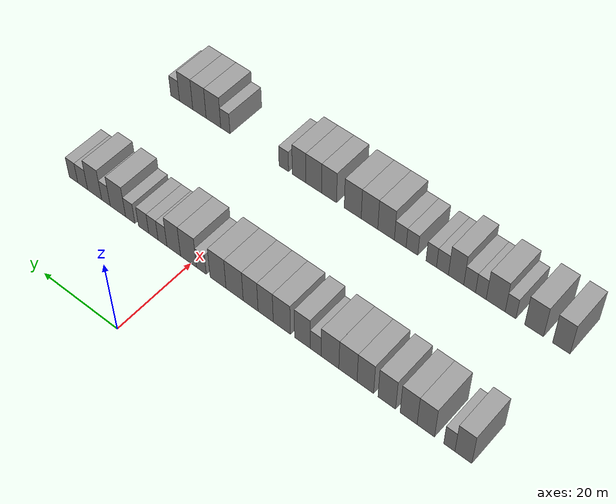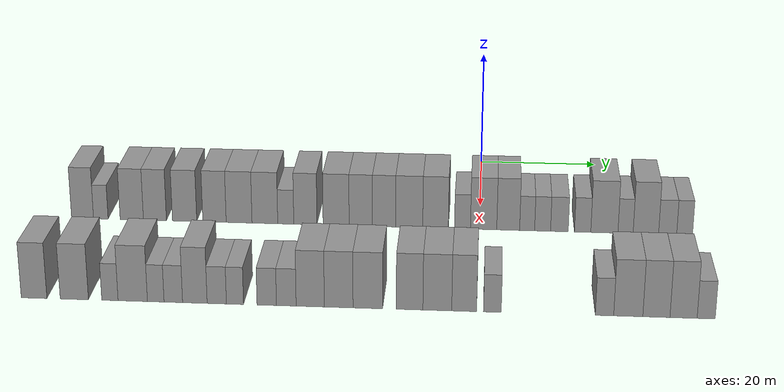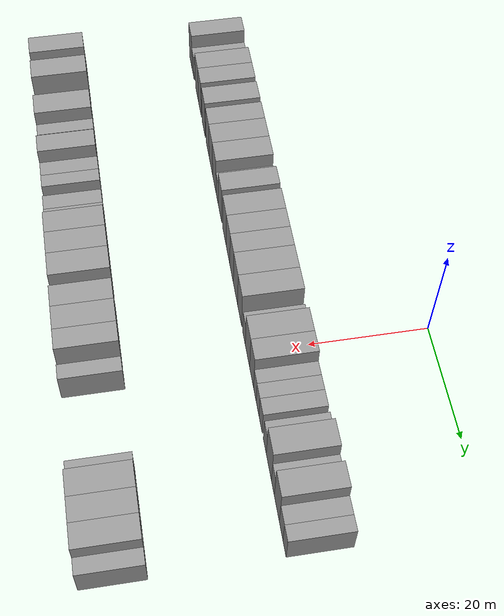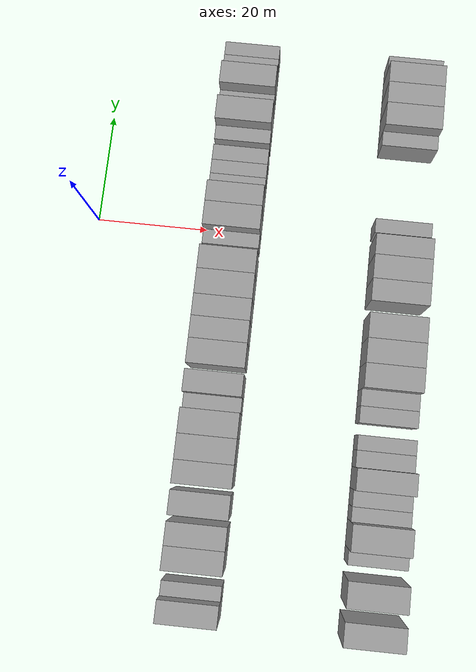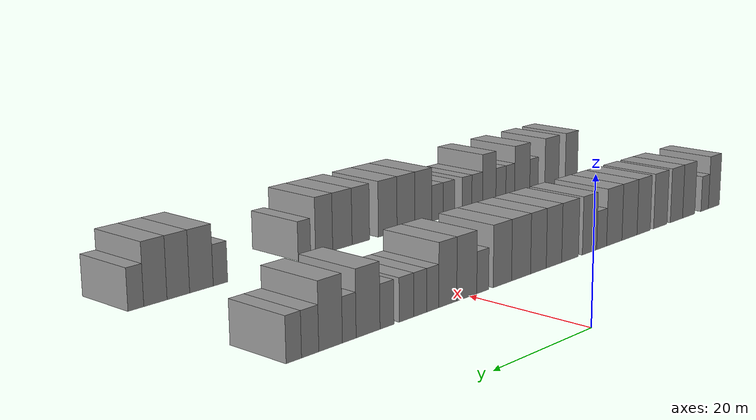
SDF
<sdf version="1.6">
 <world name="default">
  <model name="building_37">
   <static>1</static>
   <pose>25.0000 -65.2476 0 0.000000 0.000000 0.000000</pose>
   <link name="link">
    <pose>0 0 4.50 0 0 0</pose>
    <collision name="collision"><geometry><box><size>10.0000 3.6570 9.0000</size></box></geometry></collision>
    <visual name="visual">
     <cast_shadows>0</cast_shadows>
     <geometry><box><size>10.0000 3.6570 9.0000</size></box></geometry>
     <material>
      <script>
       <uri>model://grey_wall/materials/scripts</uri>
       <uri>model://grey_wall/materials/textures</uri>
       <name>vrc/grey_wall</name>
      </script>
     </material>
    </visual>
   </link>
  </model>
  <model name="building_38">
   <static>1</static>
   <pose>25.0000 -62.2054 0 0.000000 0.000000 0.000000</pose>
   <link name="link">
    <pose>0 0 3.00 0 0 0</pose>
    <collision name="collision"><geometry><box><size>10.0000 2.4275 6.0000</size></box></geometry></collision>
    <visual name="visual">
     <cast_shadows>0</cast_shadows>
     <geometry><box><size>10.0000 2.4275 6.0000</size></box></geometry>
     <material>
      <script>
       <uri>model://grey_wall/materials/scripts</uri>
       <uri>model://grey_wall/materials/textures</uri>
       <name>vrc/grey_wall</name>
      </script>
     </material>
    </visual>
   </link>
  </model>
  <model name="building_39">
   <static>1</static>
   <pose>25.0000 -57.0546 0 0.000000 0.000000 0.000000</pose>
   <link name="link">
    <pose>0 0 4.50 0 0 0</pose>
    <collision name="collision"><geometry><box><size>10.0000 3.8741 9.0000</size></box></geometry></collision>
    <visual name="visual">
     <cast_shadows>0</cast_shadows>
     <geometry><box><size>10.0000 3.8741 9.0000</size></box></geometry>
     <material>
      <script>
       <uri>model://grey_wall/materials/scripts</uri>
       <uri>model://grey_wall/materials/textures</uri>
       <name>vrc/grey_wall</name>
      </script>
     </material>
    </visual>
   </link>
  </model>
  <model name="building_40">
   <static>1</static>
   <pose>25.0000 -53.2112 0 0.000000 0.000000 0.000000</pose>
   <link name="link">
    <pose>0 0 4.50 0 0 0</pose>
    <collision name="collision"><geometry><box><size>10.0000 3.8126 9.0000</size></box></geometry></collision>
    <visual name="visual">
     <cast_shadows>0</cast_shadows>
     <geometry><box><size>10.0000 3.8126 9.0000</size></box></geometry>
     <material>
      <script>
       <uri>model://grey_wall/materials/scripts</uri>
       <uri>model://grey_wall/materials/textures</uri>
       <name>vrc/grey_wall</name>
      </script>
     </material>
    </visual>
   </link>
  </model>
  <model name="building_41">
   <static>1</static>
   <pose>25.0000 -48.2939 0 0.000000 0.000000 0.000000</pose>
   <link name="link">
    <pose>0 0 4.50 0 0 0</pose>
    <collision name="collision"><geometry><box><size>10.0000 4.0220 9.0000</size></box></geometry></collision>
    <visual name="visual">
     <cast_shadows>0</cast_shadows>
     <geometry><box><size>10.0000 4.0220 9.0000</size></box></geometry>
     <material>
      <script>
       <uri>model://grey_wall/materials/scripts</uri>
       <uri>model://grey_wall/materials/textures</uri>
       <name>vrc/grey_wall</name>
      </script>
     </material>
    </visual>
   </link>
  </model>
  <model name="building_42">
   <static>1</static>
   <pose>25.0000 -43.3545 0 0.000000 0.000000 0.000000</pose>
   <link name="link">
    <pose>0 0 4.50 0 0 0</pose>
    <collision name="collision"><geometry><box><size>10.0000 3.8568 9.0000</size></box></geometry></collision>
    <visual name="visual">
     <cast_shadows>0</cast_shadows>
     <geometry><box><size>10.0000 3.8568 9.0000</size></box></geometry>
     <material>
      <script>
       <uri>model://grey_wall/materials/scripts</uri>
       <uri>model://grey_wall/materials/textures</uri>
       <name>vrc/grey_wall</name>
      </script>
     </material>
    </visual>
   </link>
  </model>
  <model name="building_43">
   <static>1</static>
   <pose>25.0000 -39.2970 0 0.000000 0.000000 0.000000</pose>
   <link name="link">
    <pose>0 0 4.50 0 0 0</pose>
    <collision name="collision"><geometry><box><size>10.0000 4.2583 9.0000</size></box></geometry></collision>
    <visual name="visual">
     <cast_shadows>0</cast_shadows>
     <geometry><box><size>10.0000 4.2583 9.0000</size></box></geometry>
     <material>
      <script>
       <uri>model://grey_wall/materials/scripts</uri>
       <uri>model://grey_wall/materials/textures</uri>
       <name>vrc/grey_wall</name>
      </script>
     </material>
    </visual>
   </link>
  </model>
  <model name="building_44">
   <static>1</static>
   <pose>25.0000 -35.0530 0 0.000000 0.000000 0.000000</pose>
   <link name="link">
    <pose>0 0 4.50 0 0 0</pose>
    <collision name="collision"><geometry><box><size>10.0000 4.2295 9.0000</size></box></geometry></collision>
    <visual name="visual">
     <cast_shadows>0</cast_shadows>
     <geometry><box><size>10.0000 4.2295 9.0000</size></box></geometry>
     <material>
      <script>
       <uri>model://grey_wall/materials/scripts</uri>
       <uri>model://grey_wall/materials/textures</uri>
       <name>vrc/grey_wall</name>
      </script>
     </material>
    </visual>
   </link>
  </model>
  <model name="building_45">
   <static>1</static>
   <pose>25.0000 -31.6204 0 0.000000 0.000000 0.000000</pose>
   <link name="link">
    <pose>0 0 3.00 0 0 0</pose>
    <collision name="collision"><geometry><box><size>10.0000 2.6357 6.0000</size></box></geometry></collision>
    <visual name="visual">
     <cast_shadows>0</cast_shadows>
     <geometry><box><size>10.0000 2.6357 6.0000</size></box></geometry>
     <material>
      <script>
       <uri>model://grey_wall/materials/scripts</uri>
       <uri>model://grey_wall/materials/textures</uri>
       <name>vrc/grey_wall</name>
      </script>
     </material>
    </visual>
   </link>
  </model>
  <model name="building_46">
   <static>1</static>
   <pose>25.0000 -28.4024 0 0.000000 0.000000 0.000000</pose>
   <link name="link">
    <pose>0 0 4.50 0 0 0</pose>
    <collision name="collision"><geometry><box><size>10.0000 3.8005 9.0000</size></box></geometry></collision>
    <visual name="visual">
     <cast_shadows>0</cast_shadows>
     <geometry><box><size>10.0000 3.8005 9.0000</size></box></geometry>
     <material>
      <script>
       <uri>model://grey_wall/materials/scripts</uri>
       <uri>model://grey_wall/materials/textures</uri>
       <name>vrc/grey_wall</name>
      </script>
     </material>
    </visual>
   </link>
  </model>
  <model name="building_47">
   <static>1</static>
   <pose>25.0000 -23.3721 0 0.000000 0.000000 0.000000</pose>
   <link name="link">
    <pose>0 0 4.50 0 0 0</pose>
    <collision name="collision"><geometry><box><size>10.0000 4.2600 9.0000</size></box></geometry></collision>
    <visual name="visual">
     <cast_shadows>0</cast_shadows>
     <geometry><box><size>10.0000 4.2600 9.0000</size></box></geometry>
     <material>
      <script>
       <uri>model://grey_wall/materials/scripts</uri>
       <uri>model://grey_wall/materials/textures</uri>
       <name>vrc/grey_wall</name>
      </script>
     </material>
    </visual>
   </link>
  </model>
  <model name="building_48">
   <static>1</static>
   <pose>25.0000 -19.3374 0 0.000000 0.000000 0.000000</pose>
   <link name="link">
    <pose>0 0 4.50 0 0 0</pose>
    <collision name="collision"><geometry><box><size>10.0000 3.8095 9.0000</size></box></geometry></collision>
    <visual name="visual">
     <cast_shadows>0</cast_shadows>
     <geometry><box><size>10.0000 3.8095 9.0000</size></box></geometry>
     <material>
      <script>
       <uri>model://grey_wall/materials/scripts</uri>
       <uri>model://grey_wall/materials/textures</uri>
       <name>vrc/grey_wall</name>
      </script>
     </material>
    </visual>
   </link>
  </model>
  <model name="building_49">
   <static>1</static>
   <pose>25.0000 -15.5448 0 0.000000 0.000000 0.000000</pose>
   <link name="link">
    <pose>0 0 4.50 0 0 0</pose>
    <collision name="collision"><geometry><box><size>10.0000 3.7757 9.0000</size></box></geometry></collision>
    <visual name="visual">
     <cast_shadows>0</cast_shadows>
     <geometry><box><size>10.0000 3.7757 9.0000</size></box></geometry>
     <material>
      <script>
       <uri>model://grey_wall/materials/scripts</uri>
       <uri>model://grey_wall/materials/textures</uri>
       <name>vrc/grey_wall</name>
      </script>
     </material>
    </visual>
   </link>
  </model>
  <model name="building_50">
   <static>1</static>
   <pose>25.0000 -11.4437 0 0.000000 0.000000 0.000000</pose>
   <link name="link">
    <pose>0 0 4.50 0 0 0</pose>
    <collision name="collision"><geometry><box><size>10.0000 4.4266 9.0000</size></box></geometry></collision>
    <visual name="visual">
     <cast_shadows>0</cast_shadows>
     <geometry><box><size>10.0000 4.4266 9.0000</size></box></geometry>
     <material>
      <script>
       <uri>model://grey_wall/materials/scripts</uri>
       <uri>model://grey_wall/materials/textures</uri>
       <name>vrc/grey_wall</name>
      </script>
     </material>
    </visual>
   </link>
  </model>
  <model name="building_51">
   <static>1</static>
   <pose>25.0000 -7.1522 0 0.000000 0.000000 0.000000</pose>
   <link name="link">
    <pose>0 0 4.50 0 0 0</pose>
    <collision name="collision"><geometry><box><size>10.0000 4.1563 9.0000</size></box></geometry></collision>
    <visual name="visual">
     <cast_shadows>0</cast_shadows>
     <geometry><box><size>10.0000 4.1563 9.0000</size></box></geometry>
     <material>
      <script>
       <uri>model://grey_wall/materials/scripts</uri>
       <uri>model://grey_wall/materials/textures</uri>
       <name>vrc/grey_wall</name>
      </script>
     </material>
    </visual>
   </link>
  </model>
  <model name="building_52">
   <static>1</static>
   <pose>25.0000 -2.7826 0 0.000000 0.000000 0.000000</pose>
   <link name="link">
    <pose>0 0 3.00 0 0 0</pose>
    <collision name="collision"><geometry><box><size>10.0000 2.5829 6.0000</size></box></geometry></collision>
    <visual name="visual">
     <cast_shadows>0</cast_shadows>
     <geometry><box><size>10.0000 2.5829 6.0000</size></box></geometry>
     <material>
      <script>
       <uri>model://grey_wall/materials/scripts</uri>
       <uri>model://grey_wall/materials/textures</uri>
       <name>vrc/grey_wall</name>
      </script>
     </material>
    </visual>
   </link>
  </model>
  <model name="building_53">
   <static>1</static>
   <pose>25.0000 0.6351 0 0.000000 0.000000 0.000000</pose>
   <link name="link">
    <pose>0 0 4.50 0 0 0</pose>
    <collision name="collision"><geometry><box><size>10.0000 4.2525 9.0000</size></box></geometry></collision>
    <visual name="visual">
     <cast_shadows>0</cast_shadows>
     <geometry><box><size>10.0000 4.2525 9.0000</size></box></geometry>
     <material>
      <script>
       <uri>model://grey_wall/materials/scripts</uri>
       <uri>model://grey_wall/materials/textures</uri>
       <name>vrc/grey_wall</name>
      </script>
     </material>
    </visual>
   </link>
  </model>
  <model name="building_54">
   <static>1</static>
   <pose>25.0000 4.6112 0 0.000000 0.000000 0.000000</pose>
   <link name="link">
    <pose>0 0 4.50 0 0 0</pose>
    <collision name="collision"><geometry><box><size>10.0000 3.6997 9.0000</size></box></geometry></collision>
    <visual name="visual">
     <cast_shadows>0</cast_shadows>
     <geometry><box><size>10.0000 3.6997 9.0000</size></box></geometry>
     <material>
      <script>
       <uri>model://grey_wall/materials/scripts</uri>
       <uri>model://grey_wall/materials/textures</uri>
       <name>vrc/grey_wall</name>
      </script>
     </material>
    </visual>
   </link>
  </model>
  <model name="building_55">
   <static>1</static>
   <pose>25.0000 7.6699 0 0.000000 0.000000 0.000000</pose>
   <link name="link">
    <pose>0 0 3.00 0 0 0</pose>
    <collision name="collision"><geometry><box><size>10.0000 2.4176 6.0000</size></box></geometry></collision>
    <visual name="visual">
     <cast_shadows>0</cast_shadows>
     <geometry><box><size>10.0000 2.4176 6.0000</size></box></geometry>
     <material>
      <script>
       <uri>model://grey_wall/materials/scripts</uri>
       <uri>model://grey_wall/materials/textures</uri>
       <name>vrc/grey_wall</name>
      </script>
     </material>
    </visual>
   </link>
  </model>
  <model name="building_56">
   <static>1</static>
   <pose>25.0000 10.1637 0 0.000000 0.000000 0.000000</pose>
   <link name="link">
    <pose>0 0 3.00 0 0 0</pose>
    <collision name="collision"><geometry><box><size>10.0000 2.5700 6.0000</size></box></geometry></collision>
    <visual name="visual">
     <cast_shadows>0</cast_shadows>
     <geometry><box><size>10.0000 2.5700 6.0000</size></box></geometry>
     <material>
      <script>
       <uri>model://grey_wall/materials/scripts</uri>
       <uri>model://grey_wall/materials/textures</uri>
       <name>vrc/grey_wall</name>
      </script>
     </material>
    </visual>
   </link>
  </model>
  <model name="building_57">
   <static>1</static>
   <pose>25.0000 12.8728 0 0.000000 0.000000 0.000000</pose>
   <link name="link">
    <pose>0 0 3.00 0 0 0</pose>
    <collision name="collision"><geometry><box><size>10.0000 2.8482 6.0000</size></box></geometry></collision>
    <visual name="visual">
     <cast_shadows>0</cast_shadows>
     <geometry><box><size>10.0000 2.8482 6.0000</size></box></geometry>
     <material>
      <script>
       <uri>model://grey_wall/materials/scripts</uri>
       <uri>model://grey_wall/materials/textures</uri>
       <name>vrc/grey_wall</name>
      </script>
     </material>
    </visual>
   </link>
  </model>
  <model name="building_58">
   <static>1</static>
   <pose>25.0000 16.6076 0 0.000000 0.000000 0.000000</pose>
   <link name="link">
    <pose>0 0 3.00 0 0 0</pose>
    <collision name="collision"><geometry><box><size>10.0000 2.6213 6.0000</size></box></geometry></collision>
    <visual name="visual">
     <cast_shadows>0</cast_shadows>
     <geometry><box><size>10.0000 2.6213 6.0000</size></box></geometry>
     <material>
      <script>
       <uri>model://grey_wall/materials/scripts</uri>
       <uri>model://grey_wall/materials/textures</uri>
       <name>vrc/grey_wall</name>
      </script>
     </material>
    </visual>
   </link>
  </model>
  <model name="building_59">
   <static>1</static>
   <pose>25.0000 20.0964 0 0.000000 0.000000 0.000000</pose>
   <link name="link">
    <pose>0 0 4.50 0 0 0</pose>
    <collision name="collision"><geometry><box><size>10.0000 4.3563 9.0000</size></box></geometry></collision>
    <visual name="visual">
     <cast_shadows>0</cast_shadows>
     <geometry><box><size>10.0000 4.3563 9.0000</size></box></geometry>
     <material>
      <script>
       <uri>model://grey_wall/materials/scripts</uri>
       <uri>model://grey_wall/materials/textures</uri>
       <name>vrc/grey_wall</name>
      </script>
     </material>
    </visual>
   </link>
  </model>
  <model name="building_60">
   <static>1</static>
   <pose>25.0000 23.4909 0 0.000000 0.000000 0.000000</pose>
   <link name="link">
    <pose>0 0 3.00 0 0 0</pose>
    <collision name="collision"><geometry><box><size>10.0000 2.4325 6.0000</size></box></geometry></collision>
    <visual name="visual">
     <cast_shadows>0</cast_shadows>
     <geometry><box><size>10.0000 2.4325 6.0000</size></box></geometry>
     <material>
      <script>
       <uri>model://grey_wall/materials/scripts</uri>
       <uri>model://grey_wall/materials/textures</uri>
       <name>vrc/grey_wall</name>
      </script>
     </material>
    </visual>
   </link>
  </model>
  <model name="building_61">
   <static>1</static>
   <pose>25.0000 26.7454 0 0.000000 0.000000 0.000000</pose>
   <link name="link">
    <pose>0 0 4.50 0 0 0</pose>
    <collision name="collision"><geometry><box><size>10.0000 4.0766 9.0000</size></box></geometry></collision>
    <visual name="visual">
     <cast_shadows>0</cast_shadows>
     <geometry><box><size>10.0000 4.0766 9.0000</size></box></geometry>
     <material>
      <script>
       <uri>model://grey_wall/materials/scripts</uri>
       <uri>model://grey_wall/materials/textures</uri>
       <name>vrc/grey_wall</name>
      </script>
     </material>
    </visual>
   </link>
  </model>
  <model name="building_62">
   <static>1</static>
   <pose>25.0000 30.2285 0 0.000000 0.000000 0.000000</pose>
   <link name="link">
    <pose>0 0 3.00 0 0 0</pose>
    <collision name="collision"><geometry><box><size>10.0000 2.8896 6.0000</size></box></geometry></collision>
    <visual name="visual">
     <cast_shadows>0</cast_shadows>
     <geometry><box><size>10.0000 2.8896 6.0000</size></box></geometry>
     <material>
      <script>
       <uri>model://grey_wall/materials/scripts</uri>
       <uri>model://grey_wall/materials/textures</uri>
       <name>vrc/grey_wall</name>
      </script>
     </material>
    </visual>
   </link>
  </model>
  <model name="building_63">
   <static>1</static>
   <pose>25.0000 32.9374 0 0.000000 0.000000 0.000000</pose>
   <link name="link">
    <pose>0 0 3.00 0 0 0</pose>
    <collision name="collision"><geometry><box><size>10.0000 2.5283 6.0000</size></box></geometry></collision>
    <visual name="visual">
     <cast_shadows>0</cast_shadows>
     <geometry><box><size>10.0000 2.5283 6.0000</size></box></geometry>
     <material>
      <script>
       <uri>model://grey_wall/materials/scripts</uri>
       <uri>model://grey_wall/materials/textures</uri>
       <name>vrc/grey_wall</name>
      </script>
     </material>
    </visual>
   </link>
  </model>
  <model name="building_151">
   <static>1</static>
   <pose>55.0000 -65.7146 0 0.000000 0.000000 0.000000</pose>
   <link name="link">
    <pose>0 0 4.50 0 0 0</pose>
    <collision name="collision"><geometry><box><size>10.0000 3.8652 9.0000</size></box></geometry></collision>
    <visual name="visual">
     <cast_shadows>0</cast_shadows>
     <geometry><box><size>10.0000 3.8652 9.0000</size></box></geometry>
     <material>
      <script>
       <uri>model://grey_wall/materials/scripts</uri>
       <uri>model://grey_wall/materials/textures</uri>
       <name>vrc/grey_wall</name>
      </script>
     </material>
    </visual>
   </link>
  </model>
  <model name="building_152">
   <static>1</static>
   <pose>55.0000 -59.6618 0 0.000000 0.000000 0.000000</pose>
   <link name="link">
    <pose>0 0 4.50 0 0 0</pose>
    <collision name="collision"><geometry><box><size>10.0000 4.2404 9.0000</size></box></geometry></collision>
    <visual name="visual">
     <cast_shadows>0</cast_shadows>
     <geometry><box><size>10.0000 4.2404 9.0000</size></box></geometry>
     <material>
      <script>
       <uri>model://grey_wall/materials/scripts</uri>
       <uri>model://grey_wall/materials/textures</uri>
       <name>vrc/grey_wall</name>
      </script>
     </material>
    </visual>
   </link>
  </model>
  <model name="building_153">
   <static>1</static>
   <pose>55.0000 -54.3195 0 0.000000 0.000000 0.000000</pose>
   <link name="link">
    <pose>0 0 3.00 0 0 0</pose>
    <collision name="collision"><geometry><box><size>10.0000 2.4441 6.0000</size></box></geometry></collision>
    <visual name="visual">
     <cast_shadows>0</cast_shadows>
     <geometry><box><size>10.0000 2.4441 6.0000</size></box></geometry>
     <material>
      <script>
       <uri>model://grey_wall/materials/scripts</uri>
       <uri>model://grey_wall/materials/textures</uri>
       <name>vrc/grey_wall</name>
      </script>
     </material>
    </visual>
   </link>
  </model>
  <model name="building_154">
   <static>1</static>
   <pose>55.0000 -50.9003 0 0.000000 0.000000 0.000000</pose>
   <link name="link">
    <pose>0 0 4.50 0 0 0</pose>
    <collision name="collision"><geometry><box><size>10.0000 4.3943 9.0000</size></box></geometry></collision>
    <visual name="visual">
     <cast_shadows>0</cast_shadows>
     <geometry><box><size>10.0000 4.3943 9.0000</size></box></geometry>
     <material>
      <script>
       <uri>model://grey_wall/materials/scripts</uri>
       <uri>model://grey_wall/materials/textures</uri>
       <name>vrc/grey_wall</name>
      </script>
     </material>
    </visual>
   </link>
  </model>
  <model name="building_155">
   <static>1</static>
   <pose>55.0000 -47.4628 0 0.000000 0.000000 0.000000</pose>
   <link name="link">
    <pose>0 0 3.00 0 0 0</pose>
    <collision name="collision"><geometry><box><size>10.0000 2.4807 6.0000</size></box></geometry></collision>
    <visual name="visual">
     <cast_shadows>0</cast_shadows>
     <geometry><box><size>10.0000 2.4807 6.0000</size></box></geometry>
     <material>
      <script>
       <uri>model://grey_wall/materials/scripts</uri>
       <uri>model://grey_wall/materials/textures</uri>
       <name>vrc/grey_wall</name>
      </script>
     </material>
    </visual>
   </link>
  </model>
  <model name="building_156">
   <static>1</static>
   <pose>55.0000 -44.8412 0 0.000000 0.000000 0.000000</pose>
   <link name="link">
    <pose>0 0 3.00 0 0 0</pose>
    <collision name="collision"><geometry><box><size>10.0000 2.7625 6.0000</size></box></geometry></collision>
    <visual name="visual">
     <cast_shadows>0</cast_shadows>
     <geometry><box><size>10.0000 2.7625 6.0000</size></box></geometry>
     <material>
      <script>
       <uri>model://grey_wall/materials/scripts</uri>
       <uri>model://grey_wall/materials/textures</uri>
       <name>vrc/grey_wall</name>
      </script>
     </material>
    </visual>
   </link>
  </model>
  <model name="building_157">
   <static>1</static>
   <pose>55.0000 -41.6310 0 0.000000 0.000000 0.000000</pose>
   <link name="link">
    <pose>0 0 4.50 0 0 0</pose>
    <collision name="collision"><geometry><box><size>10.0000 3.6579 9.0000</size></box></geometry></collision>
    <visual name="visual">
     <cast_shadows>0</cast_shadows>
     <geometry><box><size>10.0000 3.6579 9.0000</size></box></geometry>
     <material>
      <script>
       <uri>model://grey_wall/materials/scripts</uri>
       <uri>model://grey_wall/materials/textures</uri>
       <name>vrc/grey_wall</name>
      </script>
     </material>
    </visual>
   </link>
  </model>
  <model name="building_158">
   <static>1</static>
   <pose>55.0000 -38.3703 0 0.000000 0.000000 0.000000</pose>
   <link name="link">
    <pose>0 0 3.00 0 0 0</pose>
    <collision name="collision"><geometry><box><size>10.0000 2.8633 6.0000</size></box></geometry></collision>
    <visual name="visual">
     <cast_shadows>0</cast_shadows>
     <geometry><box><size>10.0000 2.8633 6.0000</size></box></geometry>
     <material>
      <script>
       <uri>model://grey_wall/materials/scripts</uri>
       <uri>model://grey_wall/materials/textures</uri>
       <name>vrc/grey_wall</name>
      </script>
     </material>
    </visual>
   </link>
  </model>
  <model name="building_159">
   <static>1</static>
   <pose>55.0000 -35.6683 0 0.000000 0.000000 0.000000</pose>
   <link name="link">
    <pose>0 0 3.00 0 0 0</pose>
    <collision name="collision"><geometry><box><size>10.0000 2.5407 6.0000</size></box></geometry></collision>
    <visual name="visual">
     <cast_shadows>0</cast_shadows>
     <geometry><box><size>10.0000 2.5407 6.0000</size></box></geometry>
     <material>
      <script>
       <uri>model://grey_wall/materials/scripts</uri>
       <uri>model://grey_wall/materials/textures</uri>
       <name>vrc/grey_wall</name>
      </script>
     </material>
    </visual>
   </link>
  </model>
  <model name="building_160">
   <static>1</static>
   <pose>55.0000 -30.9582 0 0.000000 0.000000 0.000000</pose>
   <link name="link">
    <pose>0 0 3.00 0 0 0</pose>
    <collision name="collision"><geometry><box><size>10.0000 2.8795 6.0000</size></box></geometry></collision>
    <visual name="visual">
     <cast_shadows>0</cast_shadows>
     <geometry><box><size>10.0000 2.8795 6.0000</size></box></geometry>
     <material>
      <script>
       <uri>model://grey_wall/materials/scripts</uri>
       <uri>model://grey_wall/materials/textures</uri>
       <name>vrc/grey_wall</name>
      </script>
     </material>
    </visual>
   </link>
  </model>
  <model name="building_161">
   <static>1</static>
   <pose>55.0000 -28.0639 0 0.000000 0.000000 0.000000</pose>
   <link name="link">
    <pose>0 0 3.00 0 0 0</pose>
    <collision name="collision"><geometry><box><size>10.0000 2.9092 6.0000</size></box></geometry></collision>
    <visual name="visual">
     <cast_shadows>0</cast_shadows>
     <geometry><box><size>10.0000 2.9092 6.0000</size></box></geometry>
     <material>
      <script>
       <uri>model://grey_wall/materials/scripts</uri>
       <uri>model://grey_wall/materials/textures</uri>
       <name>vrc/grey_wall</name>
      </script>
     </material>
    </visual>
   </link>
  </model>
  <model name="building_162">
   <static>1</static>
   <pose>55.0000 -24.5283 0 0.000000 0.000000 0.000000</pose>
   <link name="link">
    <pose>0 0 4.50 0 0 0</pose>
    <collision name="collision"><geometry><box><size>10.0000 4.1621 9.0000</size></box></geometry></collision>
    <visual name="visual">
     <cast_shadows>0</cast_shadows>
     <geometry><box><size>10.0000 4.1621 9.0000</size></box></geometry>
     <material>
      <script>
       <uri>model://grey_wall/materials/scripts</uri>
       <uri>model://grey_wall/materials/textures</uri>
       <name>vrc/grey_wall</name>
      </script>
     </material>
    </visual>
   </link>
  </model>
  <model name="building_163">
   <static>1</static>
   <pose>55.0000 -20.3330 0 0.000000 0.000000 0.000000</pose>
   <link name="link">
    <pose>0 0 4.50 0 0 0</pose>
    <collision name="collision"><geometry><box><size>10.0000 4.2285 9.0000</size></box></geometry></collision>
    <visual name="visual">
     <cast_shadows>0</cast_shadows>
     <geometry><box><size>10.0000 4.2285 9.0000</size></box></geometry>
     <material>
      <script>
       <uri>model://grey_wall/materials/scripts</uri>
       <uri>model://grey_wall/materials/textures</uri>
       <name>vrc/grey_wall</name>
      </script>
     </material>
    </visual>
   </link>
  </model>
  <model name="building_164">
   <static>1</static>
   <pose>55.0000 -16.0436 0 0.000000 0.000000 0.000000</pose>
   <link name="link">
    <pose>0 0 4.50 0 0 0</pose>
    <collision name="collision"><geometry><box><size>10.0000 4.3501 9.0000</size></box></geometry></collision>
    <visual name="visual">
     <cast_shadows>0</cast_shadows>
     <geometry><box><size>10.0000 4.3501 9.0000</size></box></geometry>
     <material>
      <script>
       <uri>model://grey_wall/materials/scripts</uri>
       <uri>model://grey_wall/materials/textures</uri>
       <name>vrc/grey_wall</name>
      </script>
     </material>
    </visual>
   </link>
  </model>
  <model name="building_165">
   <static>1</static>
   <pose>55.0000 -9.9140 0 0.000000 0.000000 0.000000</pose>
   <link name="link">
    <pose>0 0 4.50 0 0 0</pose>
    <collision name="collision"><geometry><box><size>10.0000 3.9090 9.0000</size></box></geometry></collision>
    <visual name="visual">
     <cast_shadows>0</cast_shadows>
     <geometry><box><size>10.0000 3.9090 9.0000</size></box></geometry>
     <material>
      <script>
       <uri>model://grey_wall/materials/scripts</uri>
       <uri>model://grey_wall/materials/textures</uri>
       <name>vrc/grey_wall</name>
      </script>
     </material>
    </visual>
   </link>
  </model>
  <model name="building_166">
   <static>1</static>
   <pose>55.0000 -5.8526 0 0.000000 0.000000 0.000000</pose>
   <link name="link">
    <pose>0 0 4.50 0 0 0</pose>
    <collision name="collision"><geometry><box><size>10.0000 4.2138 9.0000</size></box></geometry></collision>
    <visual name="visual">
     <cast_shadows>0</cast_shadows>
     <geometry><box><size>10.0000 4.2138 9.0000</size></box></geometry>
     <material>
      <script>
       <uri>model://grey_wall/materials/scripts</uri>
       <uri>model://grey_wall/materials/textures</uri>
       <name>vrc/grey_wall</name>
      </script>
     </material>
    </visual>
   </link>
  </model>
  <model name="building_167">
   <static>1</static>
   <pose>55.0000 -1.9284 0 0.000000 0.000000 0.000000</pose>
   <link name="link">
    <pose>0 0 4.50 0 0 0</pose>
    <collision name="collision"><geometry><box><size>10.0000 3.6345 9.0000</size></box></geometry></collision>
    <visual name="visual">
     <cast_shadows>0</cast_shadows>
     <geometry><box><size>10.0000 3.6345 9.0000</size></box></geometry>
     <material>
      <script>
       <uri>model://grey_wall/materials/scripts</uri>
       <uri>model://grey_wall/materials/textures</uri>
       <name>vrc/grey_wall</name>
      </script>
     </material>
    </visual>
   </link>
  </model>
  <model name="building_168">
   <static>1</static>
   <pose>55.0000 2.1800 0 0.000000 0.000000 0.000000</pose>
   <link name="link">
    <pose>0 0 3.00 0 0 0</pose>
    <collision name="collision"><geometry><box><size>10.0000 2.5824 6.0000</size></box></geometry></collision>
    <visual name="visual">
     <cast_shadows>0</cast_shadows>
     <geometry><box><size>10.0000 2.5824 6.0000</size></box></geometry>
     <material>
      <script>
       <uri>model://grey_wall/materials/scripts</uri>
       <uri>model://grey_wall/materials/textures</uri>
       <name>vrc/grey_wall</name>
      </script>
     </material>
    </visual>
   </link>
  </model>
  <model name="building_169">
   <static>1</static>
   <pose>55.0000 18.4525 0 0.000000 0.000000 0.000000</pose>
   <link name="link">
    <pose>0 0 3.00 0 0 0</pose>
    <collision name="collision"><geometry><box><size>10.0000 2.6541 6.0000</size></box></geometry></collision>
    <visual name="visual">
     <cast_shadows>0</cast_shadows>
     <geometry><box><size>10.0000 2.6541 6.0000</size></box></geometry>
     <material>
      <script>
       <uri>model://grey_wall/materials/scripts</uri>
       <uri>model://grey_wall/materials/textures</uri>
       <name>vrc/grey_wall</name>
      </script>
     </material>
    </visual>
   </link>
  </model>
  <model name="building_170">
   <static>1</static>
   <pose>55.0000 21.8808 0 0.000000 0.000000 0.000000</pose>
   <link name="link">
    <pose>0 0 4.50 0 0 0</pose>
    <collision name="collision"><geometry><box><size>10.0000 4.2025 9.0000</size></box></geometry></collision>
    <visual name="visual">
     <cast_shadows>0</cast_shadows>
     <geometry><box><size>10.0000 4.2025 9.0000</size></box></geometry>
     <material>
      <script>
       <uri>model://grey_wall/materials/scripts</uri>
       <uri>model://grey_wall/materials/textures</uri>
       <name>vrc/grey_wall</name>
      </script>
     </material>
    </visual>
   </link>
  </model>
  <model name="building_171">
   <static>1</static>
   <pose>55.0000 25.9336 0 0.000000 0.000000 0.000000</pose>
   <link name="link">
    <pose>0 0 4.50 0 0 0</pose>
    <collision name="collision"><geometry><box><size>10.0000 3.9031 9.0000</size></box></geometry></collision>
    <visual name="visual">
     <cast_shadows>0</cast_shadows>
     <geometry><box><size>10.0000 3.9031 9.0000</size></box></geometry>
     <material>
      <script>
       <uri>model://grey_wall/materials/scripts</uri>
       <uri>model://grey_wall/materials/textures</uri>
       <name>vrc/grey_wall</name>
      </script>
     </material>
    </visual>
   </link>
  </model>
  <model name="building_172">
   <static>1</static>
   <pose>55.0000 29.8367 0 0.000000 0.000000 0.000000</pose>
   <link name="link">
    <pose>0 0 4.50 0 0 0</pose>
    <collision name="collision"><geometry><box><size>10.0000 3.9031 9.0000</size></box></geometry></collision>
    <visual name="visual">
     <cast_shadows>0</cast_shadows>
     <geometry><box><size>10.0000 3.9031 9.0000</size></box></geometry>
     <material>
      <script>
       <uri>model://grey_wall/materials/scripts</uri>
       <uri>model://grey_wall/materials/textures</uri>
       <name>vrc/grey_wall</name>
      </script>
     </material>
    </visual>
   </link>
  </model>
  <model name="building_173">
   <static>1</static>
   <pose>55.0000 33.0873 0 0.000000 0.000000 0.000000</pose>
   <link name="link">
    <pose>0 0 3.00 0 0 0</pose>
    <collision name="collision"><geometry><box><size>10.0000 2.5982 6.0000</size></box></geometry></collision>
    <visual name="visual">
     <cast_shadows>0</cast_shadows>
     <geometry><box><size>10.0000 2.5982 6.0000</size></box></geometry>
     <material>
      <script>
       <uri>model://grey_wall/materials/scripts</uri>
       <uri>model://grey_wall/materials/textures</uri>
       <name>vrc/grey_wall</name>
      </script>
     </material>
    </visual>
   </link>
  </model>
 </world>
</sdf>
